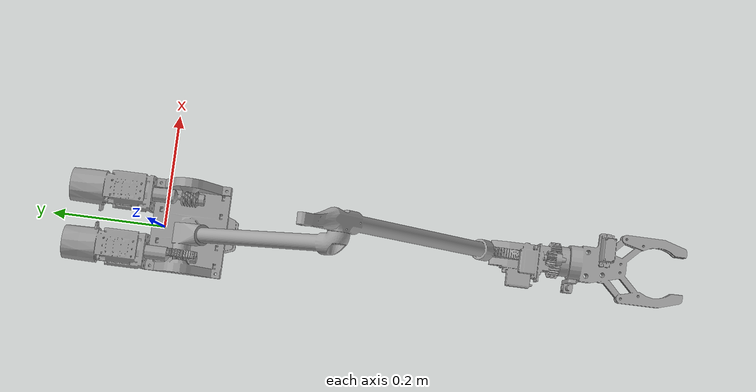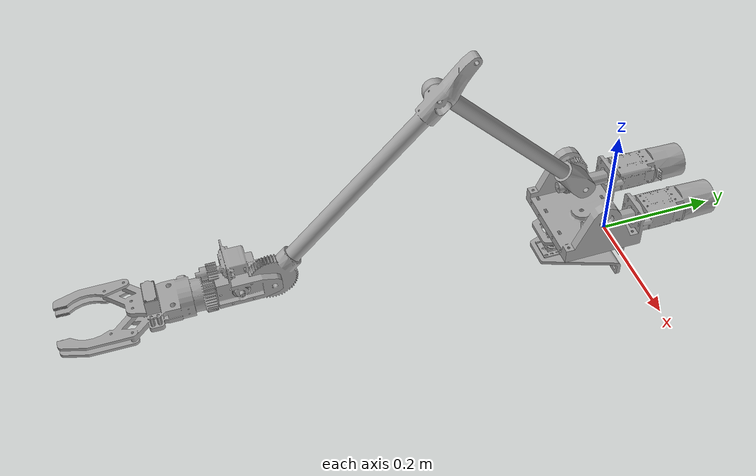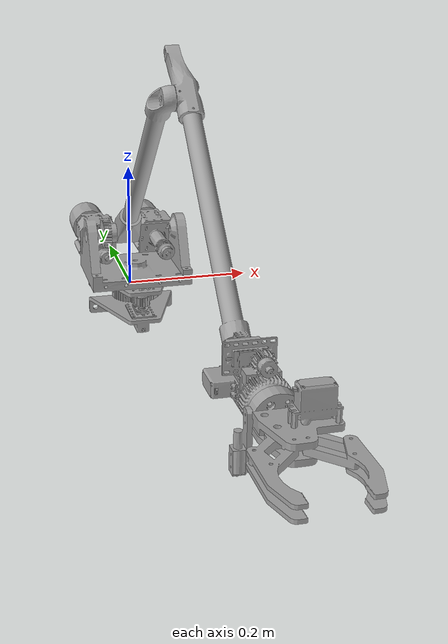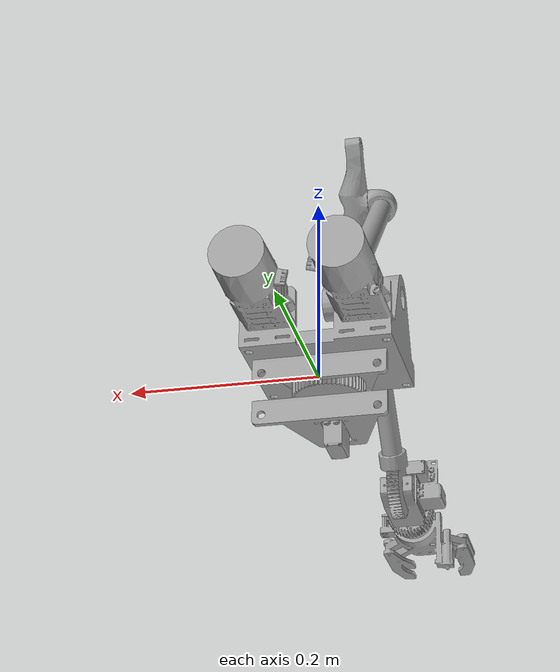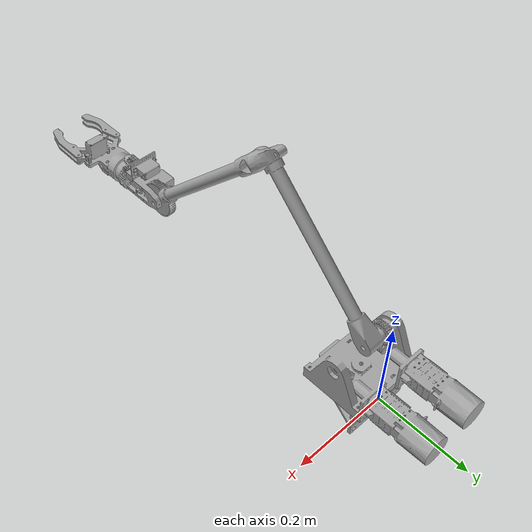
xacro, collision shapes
<?xml version="1.0"?>
<robot xmlns:xacro="http://www.ros.org/wiki/xacro" name="robot_arm_2025">
    <xacro:arg name="initial_positions_file" default="initial_positions.yaml" />

    <!-- Import robot_arm_2025 urdf file -->
    <xacro:include filename="$(find robot_arm_2025)/urdf/robot_arm_2025.urdf" />

    <!-- Import control_xacro -->
    <xacro:include filename="robot_arm_2025.ros2_control.xacro" />

    <xacro:robot_arm_2025_ros2_control name="FakeSystem" initial_positions_file="$(arg initial_positions_file)"/>

</robot>

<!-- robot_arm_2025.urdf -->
<!-- Generated using onshape-to-robot -->
<!-- Onshape https://cad.onshape.com/documents/eeb0103cbd40b637e0365577/w/3770feffb436f687f1e01e34/e/4b6bb467300bca03175a1b05 -->
<robot name="robot_arm_2025">
  <!-- Link v2_base_subassembly_link -->
  <link name="v2_base_subassembly_link">
    <inertial>
      <origin xyz="4.07318e-06 -0.0502911 -0.0043313" rpy="0 0 0"/>
      <mass value="1.51321"/>
      <inertia ixx="0.00316803" ixy="2.34651e-07" ixz="1.5938e-07" iyy="0.00235832" iyz="-6.0899e-05" izz="0.00372332"/>
    </inertial>
    <!-- Part v2_base_subassembly_link -->
    <visual>
      <origin xyz="0 -0.003175 0" rpy="0 -0 -1.5708"/>
      <geometry>
        <mesh filename="package://robot_arm_2025/meshes/visual/v2_base_subassembly_link.stl"/>
      </geometry>
      <material name="v2_base_subassembly_link_material">
        <color rgba="0.647059 0.647059 0.647059 1"/>
      </material>
    </visual>
    <collision>
      <origin xyz="0 -0.003175 0" rpy="0 -0 -1.5708"/>
      <geometry>
        <mesh filename="package://robot_arm_2025/meshes/collision/v2_base_subassembly_link_collision.stl"/>
      </geometry>
    </collision>
  </link>
  <!-- Link v2_j1_subassembly_link -->
  <link name="v2_j1_subassembly_link">
    <inertial>
      <origin xyz="-0.0713964 3e-12 -0.0312472" rpy="0 0 0"/>
      <mass value="3.54568"/>
      <inertia ixx="0.0118823" ixy="-5e-12" ixz="-0.00266312" iyy="0.0237233" iyz="-2.66497e-05" izz="0.0314315"/>
    </inertial>
    <!-- Part v2_j1_subassembly_link -->
    <visual>
      <origin xyz="0 -0 -0.002" rpy="-3.14159 0 0"/>
      <geometry>
        <mesh filename="package://robot_arm_2025/meshes/visual/v2_j1_subassembly_link.stl"/>
      </geometry>
      <material name="v2_j1_subassembly_link_material">
        <color rgba="0.647059 0.647059 0.647059 1"/>
      </material>
    </visual>
    <collision>
      <origin xyz="0 -0 -0.002" rpy="-3.14159 0 0"/>
      <geometry>
        <mesh filename="package://robot_arm_2025/meshes/collision/v2_j1_subassembly_link_collision.stl"/>
      </geometry>
    </collision>
  </link>
  <!-- Link v2_limb_1_subassembly_link -->
  <link name="v2_limb_1_subassembly_link">
    <inertial>
      <origin xyz="0.0923601 0.0923647 -0.0408998" rpy="0 0 0"/>
      <mass value="0.653342"/>
      <inertia ixx="0.00658938" ixy="-0.00640996" ixz="0.000302437" iyy="0.00658973" iyz="0.000302447" izz="0.0129345"/>
    </inertial>
    <!-- Part v2_limb_1_subassembly_link -->
    <visual>
      <origin xyz="0.140978 0.140978 -0.0443" rpy="1.5708 0 0.785398"/>
      <geometry>
        <mesh filename="package://robot_arm_2025/meshes/visual/v2_limb_1_subassembly_link.stl"/>
      </geometry>
      <material name="v2_limb_1_subassembly_link_material">
        <color rgba="0.647059 0.647059 0.647059 1"/>
      </material>
    </visual>
    <collision>
      <origin xyz="0.140978 0.140978 -0.0443" rpy="1.5708 0 0.785398"/>
      <geometry>
        <mesh filename="package://robot_arm_2025/meshes/collision/v2_limb_1_subassembly_link_collision.stl"/>
      </geometry>
    </collision>
  </link>
  <!-- Link v2_limb_2_subassembly_link -->
  <link name="v2_limb_2_subassembly_link">
    <inertial>
      <origin xyz="-8.66429e-05 -0.183172 -0.0171898" rpy="0 0 0"/>
      <mass value="0.468531"/>
      <inertia ixx="0.0133175" ixy="7.25101e-06" ixz="8.4204e-08" iyy="0.000101321" iyz="-0.00013504" izz="0.0133635"/>
    </inertial>
    <!-- Part v2_limb_2_subassembly_link -->
    <visual>
      <origin xyz="0 -0.179373 -0.0185" rpy="-1.5708 -0 -1.5708"/>
      <geometry>
        <mesh filename="package://robot_arm_2025/meshes/visual/v2_limb_2_subassembly_link.stl"/>
      </geometry>
      <material name="v2_limb_2_subassembly_link_material">
        <color rgba="0.647059 0.647059 0.647059 1"/>
      </material>
    </visual>
    <collision>
      <origin xyz="0 -0.179373 -0.0185" rpy="-1.5708 -0 -1.5708"/>
      <geometry>
        <mesh filename="package://robot_arm_2025/meshes/collision/v2_limb_2_subassembly_link_collision.stl"/>
      </geometry>
    </collision>
  </link>
  <!-- Link v2_j4_subassembly_link -->
  <link name="v2_j4_subassembly_link">
    <inertial>
      <origin xyz="0.0262006 -0.0426423 -0.00846426" rpy="0 0 0"/>
      <mass value="0.519744"/>
      <inertia ixx="0.000511447" ixy="5.16727e-05" ixz="-1.3572e-05" iyy="0.000338242" iyz="2.37822e-05" izz="0.000537518"/>
    </inertial>
    <!-- Part v2_j4_subassembly_link -->
    <visual>
      <origin xyz="0.0604576 -0.0604576 0" rpy="1.5708 0 -2.35619"/>
      <geometry>
        <mesh filename="package://robot_arm_2025/meshes/visual/v2_j4_subassembly_link.stl"/>
      </geometry>
      <material name="v2_j4_subassembly_link_material">
        <color rgba="0.647059 0.647059 0.647059 1"/>
      </material>
    </visual>
    <collision>
      <origin xyz="0.0604576 -0.0604576 0" rpy="1.5708 0 -2.35619"/>
      <geometry>
        <mesh filename="package://robot_arm_2025/meshes/collision/v2_j4_subassembly_link_collision.stl"/>
      </geometry>
    </collision>
  </link>
  <!-- Link v2_j5_subassembly -->
  <link name="v2_j5_subassembly">
    <inertial>
      <origin xyz="0.00187558 -0.00299972 -0.0849541" rpy="0 0 0"/>
      <mass value="0.72408"/>
      <inertia ixx="0.00207337" ixy="0.000136056" ixz="7.81862e-05" iyy="0.00232807" iyz="-7.92316e-05" izz="0.000785305"/>
    </inertial>
    <!-- Part heavy_lift_claw_subassembly_link -->
    <visual>
      <origin xyz="-0 0 -0.035" rpy="1.5708 -0 3.14159"/>
      <geometry>
        <mesh filename="package://robot_arm_2025/meshes/visual/heavy_lift_claw_subassembly_link.stl"/>
      </geometry>
      <material name="heavy_lift_claw_subassembly_link_material">
        <color rgba="0.647059 0.647059 0.647059 1"/>
      </material>
    </visual>
    <collision>
      <origin xyz="-0 0 -0.035" rpy="1.5708 -0 3.14159"/>
      <geometry>
        <mesh filename="package://robot_arm_2025/meshes/collision/heavy_lift_claw_subassembly_link_collision.stl"/>
      </geometry>
    </collision>
    <!-- Part v2_j5_a -->
    <visual>
      <origin xyz="0 0 -0.01" rpy="1.5708 -0 0"/>
      <geometry>
        <mesh filename="package://robot_arm_2025/meshes/visual/v2_j5_a.stl"/>
      </geometry>
      <material name="v2_j5_a_material">
        <color rgba="0.647059 0.647059 0.647059 1"/>
      </material>
    </visual>
    <collision>
      <origin xyz="0 0 -0.01" rpy="1.5708 -0 0"/>
      <geometry>
        <mesh filename="package://robot_arm_2025/meshes/collision/v2_j5_a_collision.stl"/>
      </geometry>
    </collision>
  </link>
  <!-- Frame Solenoid (dummy link + fixed joint) -->
  <link name="Solenoid">
    <inertial>
      <origin xyz="0 0 0" rpy="0 0 0"/>
      <mass value="1e-9"/>
      <inertia ixx="1e-9" ixy="1e-9" ixz="1e-9" iyy="1e-9" iyz="1e-9" izz="1e-9"/>
    </inertial>
  </link>
  <joint name="Solenoid_frame" type="fixed">
    <origin xyz="-0.0421343 0.0675 -0.045" rpy="1.5708 -0 3.14159"/>
    <parent link="v2_j5_subassembly"/>
    <child link="Solenoid"/>
    <axis xyz="0 0 0"/>
  </joint>
  <!-- Frame ToolEnd (dummy link + fixed joint) -->
  <link name="ToolEnd">
    <inertial>
      <origin xyz="0 0 0" rpy="0 0 0"/>
      <mass value="1e-9"/>
      <inertia ixx="1e-9" ixy="1e-9" ixz="1e-9" iyy="1e-9" iyz="1e-9" izz="1e-9"/>
    </inertial>
  </link>
  <joint name="ToolEnd_frame" type="fixed">
    <origin xyz="0 0 -0.035" rpy="3.14159 -0 0"/>
    <parent link="v2_j5_subassembly"/>
    <child link="ToolEnd"/>
    <axis xyz="0 0 0"/>
  </joint>
  <!-- Joint from v2_j4_subassembly_link to v2_j5_subassembly -->
  <joint name="J5" type="revolute">
    <origin xyz="0.0604576 -0.0604576 0" rpy="-0.785398 -1.5708 0"/>
    <parent link="v2_j4_subassembly_link"/>
    <child link="v2_j5_subassembly"/>
    <axis xyz="0 0 1"/>
    <limit effort="10" velocity="10" lower="-3.14159" upper="3.14159"/>
  </joint>
  <!-- Joint from v2_limb_2_subassembly_link to v2_j4_subassembly_link -->
  <joint name="J4" type="revolute">
    <origin xyz="0 -0.376247 -0.0185" rpy="3.14159 -0 -1.5708"/>
    <parent link="v2_limb_2_subassembly_link"/>
    <child link="v2_j4_subassembly_link"/>
    <axis xyz="0 0 1"/>
    <limit effort="10" velocity="10" lower="-0.959931" upper="2.96706"/>
  </joint>
  <!-- Joint from v2_limb_1_subassembly_link to v2_limb_2_subassembly_link -->
  <joint name="J3" type="revolute">
    <origin xyz="0.266047 0.266047 -0.0618" rpy="0 0 0.785398"/>
    <parent link="v2_limb_1_subassembly_link"/>
    <child link="v2_limb_2_subassembly_link"/>
    <axis xyz="0 0 1"/>
    <limit effort="10" velocity="10" lower="-1.22173" upper="1.22173"/>
  </joint>
  <!-- Joint from v2_j1_subassembly_link to v2_limb_1_subassembly_link -->
  <joint name="J2" type="revolute">
    <origin xyz="0 0.058 -0.077" rpy="-1.5708 0 0"/>
    <parent link="v2_j1_subassembly_link"/>
    <child link="v2_limb_1_subassembly_link"/>
    <axis xyz="0 0 1"/>
    <limit effort="10" velocity="10" lower="-0.785398" upper="0.785398"/>
  </joint>
  <!-- Joint from v2_base_subassembly_link to v2_j1_subassembly_link -->
  <joint name="J1" type="revolute">
    <origin xyz="-0 -0.0493499 0.0293499" rpy="-3.14159 -0 -1.5708"/>
    <parent link="v2_base_subassembly_link"/>
    <child link="v2_j1_subassembly_link"/>
    <axis xyz="0 0 1"/>
    <limit effort="10" velocity="10" lower="-3.14159" upper="3.14159"/>
  </joint>
</robot>
